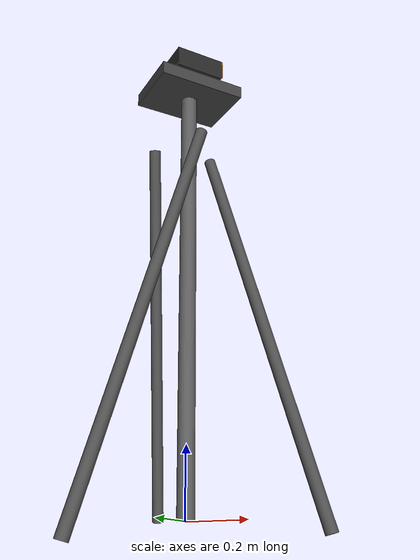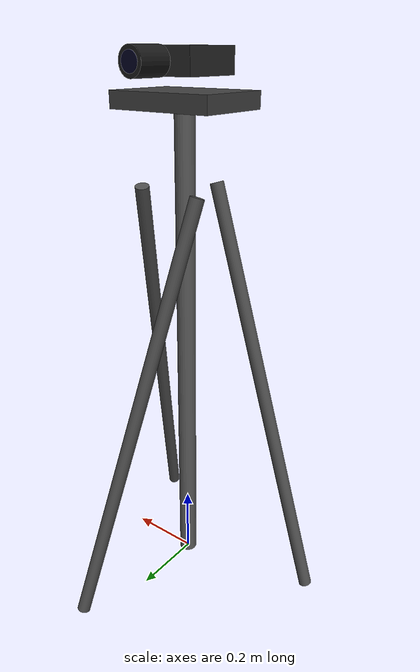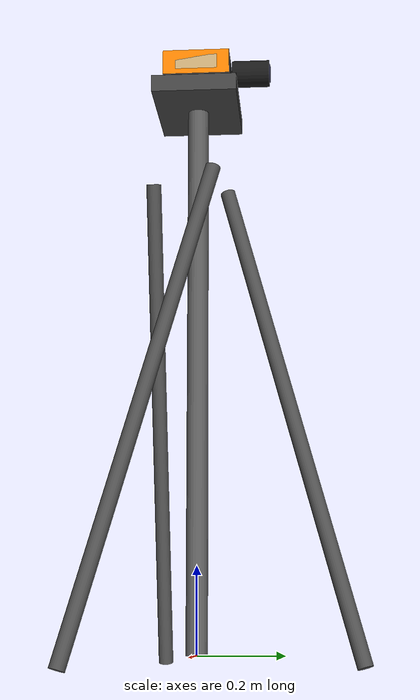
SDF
<?xml version="1.0"?>
<sdf version="1.6">
  <model name="sensor_unit">
    <static>true</static>
    <link name="base">

      <!-- ── 三脚架支腿 ×3 ─────────────────────────────────────────────── -->
      <visual name="leg_a">
        <pose>0.0  0.22 0.55 0 -0.3 1.047</pose>
        <geometry><cylinder><radius>0.018</radius><length>1.20</length></cylinder></geometry>
        <material><ambient>0.25 0.25 0.25 1</ambient><diffuse>0.3 0.3 0.3 1</diffuse></material>
      </visual>
      <visual name="leg_b">
        <pose>0.19 -0.11 0.55 0 -0.3 -1.047</pose>
        <geometry><cylinder><radius>0.018</radius><length>1.20</length></cylinder></geometry>
        <material><ambient>0.25 0.25 0.25 1</ambient><diffuse>0.3 0.3 0.3 1</diffuse></material>
      </visual>
      <visual name="leg_c">
        <pose>-0.19 -0.11 0.55 0 -0.3 3.14</pose>
        <geometry><cylinder><radius>0.018</radius><length>1.20</length></cylinder></geometry>
        <material><ambient>0.25 0.25 0.25 1</ambient><diffuse>0.3 0.3 0.3 1</diffuse></material>
      </visual>

      <!-- ── 主立柱 ───────────────────────────────────────────────────── -->
      <visual name="pole">
        <pose>0 0 0.65 0 0 0</pose>
        <geometry><cylinder><radius>0.025</radius><length>1.3</length></cylinder></geometry>
        <material><ambient>0.3 0.3 0.3 1</ambient><diffuse>0.35 0.35 0.35 1</diffuse></material>
      </visual>

      <!-- ── 云台顶板 ─────────────────────────────────────────────────── -->
      <visual name="top_plate">
        <pose>0 0 1.32 0 0 0</pose>
        <geometry><box><size>0.28 0.20 0.04</size></box></geometry>
        <material><ambient>0.2 0.2 0.2 1</ambient><diffuse>0.25 0.25 0.25 1</diffuse></material>
      </visual>

      <!-- ── Livox Avia 雷达（深色矩形盒，中央，橙色标志线） ───────────── -->
      <visual name="radar_body">
        <pose>0 0 1.40 0 0 0</pose>
        <geometry><box><size>0.16 0.16 0.06</size></box></geometry>
        <material><ambient>0.12 0.12 0.12 1</ambient><diffuse>0.15 0.15 0.15 1</diffuse>
          <specular>0.5 0.5 0.5 1</specular></material>
      </visual>
      <!-- 橙色标志条（视觉细节） -->
      <visual name="radar_stripe">
        <pose>0.081 0 1.40 0 0 0</pose>
        <geometry><box><size>0.002 0.16 0.06</size></box></geometry>
        <material><ambient>1.0 0.5 0.0 1</ambient><diffuse>1.0 0.5 0.0 1</diffuse></material>
      </visual>
      <!-- 激光口窗（浅灰）-->
      <visual name="radar_window">
        <pose>0.081 0 1.40 0 0 0</pose>
        <geometry><box><size>0.002 0.10 0.035</size></box></geometry>
        <material><ambient>0.7 0.8 0.8 0.6</ambient><diffuse>0.7 0.8 0.8 0.6</diffuse></material>
      </visual>

      <!-- ── 相机（黑色圆柱，安装在雷达右侧） ───────────────────────── -->
      <visual name="camera_body">
        <pose>0 0.13 1.40 1.5708 0 0</pose>
        <geometry><cylinder><radius>0.032</radius><length>0.09</length></cylinder></geometry>
        <material><ambient>0.08 0.08 0.08 1</ambient><diffuse>0.1 0.1 0.1 1</diffuse>
          <specular>0.6 0.6 0.6 1</specular></material>
      </visual>
      <!-- 镜头反光圈 -->
      <visual name="camera_lens">
        <pose>0 0.175 1.40 1.5708 0 0</pose>
        <geometry><cylinder><radius>0.022</radius><length>0.005</length></cylinder></geometry>
        <material><ambient>0.05 0.05 0.2 0.8</ambient><diffuse>0.05 0.05 0.2 0.8</diffuse></material>
      </visual>

      <!-- 碰撞体（简化包围盒）-->
      <collision name="collision">
        <pose>0 0 0.7 0 0 0</pose>
        <geometry><box><size>0.3 0.3 1.5</size></box></geometry>
      </collision>
    </link>
  </model>
</sdf>
